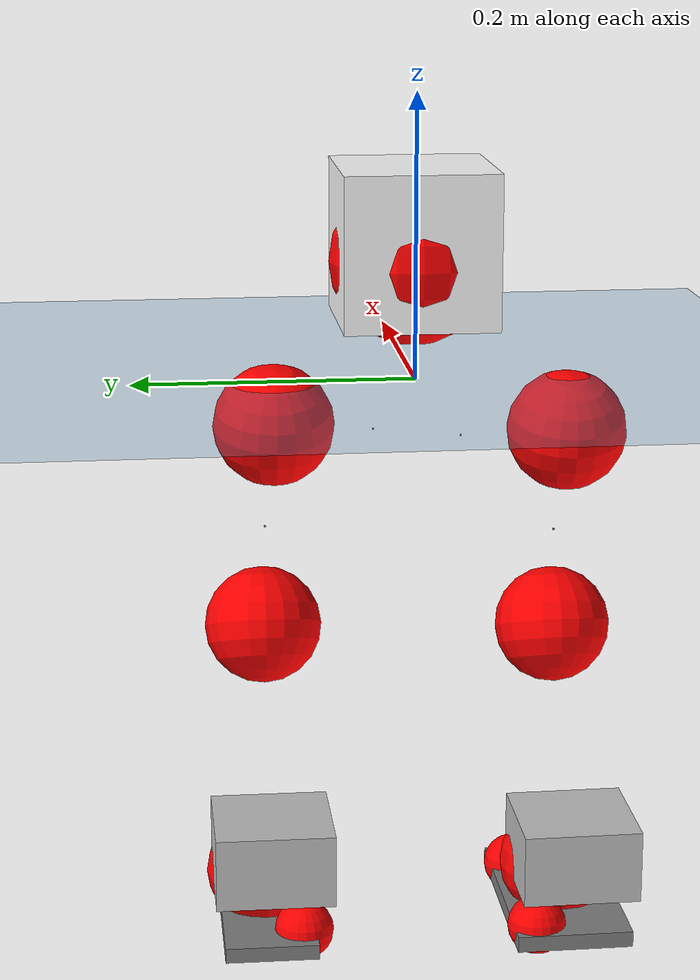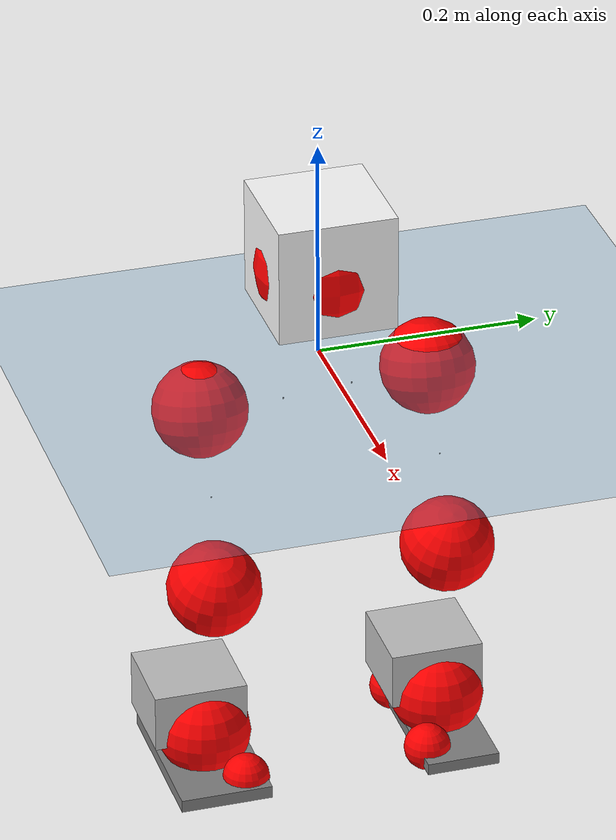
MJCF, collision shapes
<mujoco model="pi_12dof_release_v1">
  <compiler angle="radian" assetdir="assets" balanceinertia="true" inertiafromgeom="false"/>

  <option timestep="0.005" density="1.2" viscosity="2e-05"/>

  <size nkey="1"/>

  <visual>
    <quality shadowsize="8192"/>
    <map shadowclip="0.5"/>
  </visual>

  <default>
    <default class="/">
      <joint armature="0.01" damping="0.01" frictionloss="0.01"/>
      <geom contype="0" conaffinity="0" group="1" solref="-1000 -80"/>
      <site size="0.01 0.005 0.005" group="5"/>
      <general forcelimited="true" biastype="affine" gainprm="20" biasprm="0 -20 -0.5"/>
      <default class="foot">
        <geom size="0.0845 0.036 0.005" type="box" condim="6" group="4" priority="1" friction="0.9 0.2 0.2" solimp="0.015 1 0.005"/>
      </default>
      <default class="reward_collision_sphere">
        <geom group="5" rgba="1 0 0 1"/>
      </default>
    </default>
  </default>

  <asset>
    <texture type="skybox" colorspace="auto" name="//unnamed_texture_0" builtin="gradient" rgb1="0.95 0.95 0.95" rgb2="0.95 0.95 0.95" width="100" height="600"/>
    <texture type="2d" colorspace="auto" name="texplane" builtin="checker" rgb1="0.345 0.575 0.748" rgb2="0.345 0.575 0.748" markrgb="1 1 1" width="512" height="512"/>
    <material name="MatPlane" class="/" texture="texplane" texuniform="true" texrepeat="2 2" specular="0.9"/>
    <mesh name="baselink_1" class="/" file="baselink_1.STL"/>
    <mesh name="r_hip_pitch_link" class="/" file="r_hip_pitch_link.STL"/>
    <mesh name="r_hip_roll_link" class="/" file="r_hip_roll_link.STL"/>
    <mesh name="r_thigh_link" class="/" file="r_thigh_link.STL"/>
    <mesh name="r_calf_link" class="/" file="r_calf_link.STL"/>
    <mesh name="r_ankle_pitch_link" class="/" file="r_ankle_pitch_link.STL"/>
    <mesh name="r_ankle_roll_link" class="/" file="r_ankle_roll_link.STL"/>
    <mesh name="l_hip_pitch_link" class="/" file="l_hip_pitch_link.STL"/>
    <mesh name="l_hip_roll_link" class="/" file="l_hip_roll_link.STL"/>
    <mesh name="l_thigh_link" class="/" file="l_thigh_link.STL"/>
    <mesh name="l_calf_link" class="/" file="l_calf_link.STL"/>
    <mesh name="l_ankle_pitch_link" class="/" file="l_ankle_pitch_link.STL"/>
    <mesh name="l_ankle_roll_link" class="/" file="l_ankle_roll_link.STL"/>
  </asset>

  <worldbody>
    <geom name="floor" class="/" size="100 100 0.125" type="plane" group="0" material="MatPlane"/>
    <light name="toplight_shadow" class="/" pos="0 0 5" dir="0.0990148 0.0990148 -0.990148" type="directional" ambient="0.04 0.04 0.04" diffuse="0.55 0.55 0.55" specular="0.12 0.12 0.12"/>
    <light name="toplight_fill" class="/" pos="0 0 5" dir="0.0990148 0.0990148 -0.990148" type="directional" castshadow="false" ambient="0.04 0.04 0.04" diffuse="0.3 0.3 0.3" specular="0.08 0.08 0.08"/>
    <body name="trunk" pos="0.000805373 0.00204415 0.00163318" quat="1 5.81131e-05 0.00010044 -3.67385e-06">
      <inertial pos="0.00431064 0.00262191 0.0479964" quat="0.676176 0.0187777 0.0250327 0.736075" mass="2.70854" diaginertia="0.00307209 0.0260536 0.00972147"/>
      <joint name="//unnamed_joint_0" type="free"/>
      <geom name="//unnamed_geom_1" class="/" type="mesh" density="0" rgba="1 1 1 1" mesh="baselink_1"/>
      <geom name="//unnamed_geom_2" class="/" size="0.0536766 0.0536766 0.0536766" pos="0 0 0.094723" type="box" rgba="1 1 1 1"/>
      <geom name="//unnamed_geom_3" class="reward_collision_sphere" size="0.0590443" pos="0 0 0.0828827"/>
      <site name="imu" class="/" pos="-0.00876194 0.000937313 0.0101497" size="0.0107353"/>
      <camera name="track" class="/" pos="0 -2.48185 0" quat="0.707107 0.707107 0 0" mode="trackcom"/>
      <camera name="ego_camera" class="/" pos="0.0596724 0 0.213127" quat="-0.5 -0.5 0.5 0.5"/>
      <body name="r_hip_pitch_link" pos="-0.000185737 -0.0347503 -0.0434434" quat="0.992183 -0.00121263 -0.124781 -0.000188537">
        <inertial pos="-0.000474775 -0.0680579 0.000587197" quat="-0.0247013 0.701392 -0.0321617 0.711621" mass="0.468492" diaginertia="3.46469e-05 0.000304432 0.000190227"/>
        <joint name="r_hip_pitch_joint" class="/" pos="0 0 0" axis="-0.00509109 -0.999974 -0.00511379" stiffness="0.00258464" range="-1.76519 1.24234" armature="0.0106888" damping="0.00984143" frictionloss="0.00944753"/>
        <geom name="//unnamed_geom_4" class="/" type="mesh" density="0" rgba="0.75294 0.75294 0.75294 1" mesh="r_hip_pitch_link"/>
        <geom name="//unnamed_geom_5" class="/" size="0.000536766 0.000536766 0.000536766" type="box" rgba="0.75294 0.75294 0.75294 1"/>
        <body name="r_hip_roll_link" pos="0.00143812 -0.0763827 0.00122492" quat="1 -0.000538267 -0.000325066 -8.16486e-05">
          <inertial pos="-0.00257474 0.000206042 -0.0723156" quat="0.699641 -0.0776872 -0.097014 0.703601" mass="0.481724" diaginertia="0.000110048 0.000825814 0.000293803"/>
          <joint name="r_hip_roll_joint" class="/" pos="0 0 0" axis="-0.999995 -0.00241561 0.00204371" stiffness="0.0063569" range="-0.117865 0.443501" armature="0.0111764" damping="0.0508428" frictionloss="0.0100959"/>
          <geom name="//unnamed_geom_6" class="/" type="mesh" density="0" rgba="0.75294 0.75294 0.75294 1" mesh="r_hip_roll_link"/>
          <geom name="//unnamed_geom_7" class="/" size="0.000536766 0.000536766 0.000536766" type="box" rgba="0.75294 0.75294 0.75294 1"/>
          <geom name="//unnamed_geom_8" class="reward_collision_sphere" size="0.0429413"/>
          <body name="r_thigh_link" pos="-0.00152883 0.00432343 -0.0815084" quat="1 -0.000199329 5.56676e-05 4.85961e-05">
            <inertial pos="-0.000547006 0.00113492 -0.0508024" quat="0.738695 0.674032 0.00335324 0.000567108" mass="0.134481" diaginertia="4.03553e-05 0.000259312 0.000141883"/>
            <joint name="r_thigh_joint" class="/" pos="0 0 0" axis="0.00152519 0.00497054 -0.999986" range="-0.278728 0.591144" armature="0.00999353" damping="0.00788676" frictionloss="0.0104259"/>
            <geom name="//unnamed_geom_9" class="/" type="mesh" density="0" rgba="0.75294 0.75294 0.75294 1" mesh="r_thigh_link"/>
            <geom name="//unnamed_geom_10" class="/" size="0.000536766 0.000536766 0.000536766" type="box" rgba="0.75294 0.75294 0.75294 1"/>
            <body name="r_calf_link" pos="0.00109411 -0.00421393 -0.0835639" quat="0.947542 -1.8978e-05 0.319632 0.000219518">
              <inertial pos="-0.00225076 0.00120735 -0.0803032" quat="0.999975 -0.00512578 0.00435236 0.00228914" mass="1.0699" diaginertia="0.00111299 0.0113193 0.000401827"/>
              <joint name="r_calf_joint" class="/" pos="0 0 0" axis="0.00035601 -1 0.000462364" range="-1.77394 0.659331" armature="0.00946197" damping="0.00503485" frictionloss="0.011164"/>
              <geom name="//unnamed_geom_11" class="/" type="mesh" density="0" rgba="0.75294 0.75294 0.75294 1" mesh="r_calf_link"/>
              <geom name="//unnamed_geom_12" class="/" size="0.000536766 0.000536766 0.000536766" type="box" rgba="0.75294 0.75294 0.75294 1"/>
              <geom name="//unnamed_geom_13" class="reward_collision_sphere" size="0.0429413"/>
              <body name="r_ankle_pitch_link" pos="-0.00447329 -0.00574372 -0.165947" quat="0.979999 0.000142904 -0.199002 -0.000122688">
                <inertial pos="0.0029653 0.0100922 -0.00185945" quat="0.00258546 0.707475 -0.00191155 0.706731" mass="0.206803" diaginertia="9.64353e-05 0.000632781 0.000263478"/>
                <joint name="r_ankle_pitch_joint" class="/" pos="0 0 0" axis="-0.0229993 -0.999729 0.00353924" stiffness="0.00811513" range="-1.27879 0.411739" armature="0.0111656" damping="0.00523555" frictionloss="0.00976377"/>
                <geom name="//unnamed_geom_14" class="/" type="mesh" density="0" rgba="0.75294 0.75294 0.75294 1" mesh="r_ankle_pitch_link"/>
                <geom name="//unnamed_geom_15" class="/" size="0.0418677 0.0429413 0.0268383" type="box" rgba="0.75294 0.75294 0.75294 1"/>
                <body name="r_ankle_roll_link" pos="0.0653012 0.00667175 0.000815514" quat="0.999999 0.00108458 -0.000601349 0.00106682">
                  <inertial pos="-0.0170372 -0.000755967 -0.0181835" quat="0.559036 0.431098 0.435074 0.558877" mass="0.655995" diaginertia="0.000372706 0.0030181 0.000678333"/>
                  <joint name="r_ankle_roll_joint" class="/" pos="0 0 0" axis="-0.999999 0.001323 0.000297141" stiffness="0.00183046" range="-0.0448781 0.140403" armature="0.0108999" damping="0" frictionloss="0.0103776"/>
                  <geom name="//unnamed_geom_16" class="/" type="mesh" density="0" rgba="0.75294 0.75294 0.75294 1" mesh="r_ankle_roll_link"/>
                  <geom name="//unnamed_geom_17" class="/" type="mesh" rgba="0.75294 0.75294 0.75294 1" mesh="r_ankle_roll_link"/>
                  <geom name="right_foot" class="foot" size="0.0770243 0.0421513 0.0058787" pos="-0.0405772 0 -0.0520977"/>
                  <geom name="//unnamed_geom_19" class="reward_collision_sphere" size="0.0429413" pos="-0.0397816 0 -0.0236808"/>
                  <geom name="//unnamed_geom_20" class="reward_collision_sphere" size="0.0214706" pos="0.0119345 0.0248185 -0.0473615"/>
                  <geom name="//unnamed_geom_21" class="reward_collision_sphere" size="0.0214706" pos="-0.0954758 0.0248185 -0.0473615"/>
                  <site name="right_foot" class="foot" pos="-0.0405772 0 -0.0520977" size="0.0107353"/>
                </body>
              </body>
            </body>
          </body>
        </body>
      </body>
      <body name="l_hip_pitch_link" pos="0.00100745 0.02775 -0.0373321" quat="0.992259 -0.000884264 -0.124183 4.07611e-05">
        <inertial pos="-0.000194503 0.0701826 0.000346622" quat="-0.0454732 0.711695 0.029442 0.700396" mass="0.504505" diaginertia="4.13128e-05 0.000315658 0.000240912"/>
        <joint name="l_hip_pitch_joint" class="/" pos="0 0 0" axis="0.00317484 0.999992 0.00256938" range="-1.26155 1.75962" armature="0.0102845" damping="0.0188325" frictionloss="0.0102831"/>
        <geom name="//unnamed_geom_22" class="/" type="mesh" density="0" rgba="0.75294 0.75294 0.75294 1" mesh="l_hip_pitch_link"/>
        <geom name="//unnamed_geom_23" class="/" size="0.000536766 0.000536766 0.000536766" type="box" rgba="0.75294 0.75294 0.75294 1"/>
        <body name="l_hip_roll_link" pos="-0.000221286 0.0704921 0.00546942" quat="1 -0.000274254 -0.000280577 -0.000586725">
          <inertial pos="0.00163978 -0.00158979 -0.0672659" quat="0.699257 -0.0752408 -0.078309 0.706574" mass="0.454069" diaginertia="0.000105403 0.000850129 0.000299445"/>
          <joint name="l_hip_roll_joint" class="/" pos="0 0 0" axis="-0.999932 -0.00315579 -0.0112044" range="-0.408572 0.136794" armature="0.0093267" damping="0.0129444" frictionloss="0.0116893"/>
          <geom name="//unnamed_geom_24" class="/" type="mesh" density="0" rgba="0.75294 0.75294 0.75294 1" mesh="l_hip_roll_link"/>
          <geom name="//unnamed_geom_25" class="/" size="0.000536766 0.000536766 0.000536766" type="box" rgba="0.75294 0.75294 0.75294 1"/>
          <geom name="//unnamed_geom_26" class="reward_collision_sphere" size="0.0429413"/>
          <body name="l_thigh_link" pos="-0.000416127 0.00592678 -0.0824636" quat="1 0.000845458 0.000397925 -0.000119056">
            <inertial pos="5.03268e-05 -0.00165866 -0.0594951" quat="0.677471 0.735541 -0.00341539 0.00107676" mass="0.138763" diaginertia="3.80973e-05 0.000274754 0.000134203"/>
            <joint name="l_thigh_joint" class="/" pos="0 0 0" axis="-0.000648714 -0.00179939 -0.999998" range="-0.560116 0.292859" armature="0.0109923" damping="0" frictionloss="0.0109402"/>
            <geom name="//unnamed_geom_27" class="/" type="mesh" density="0" rgba="0.75294 0.75294 0.75294 1" mesh="l_thigh_link"/>
            <geom name="//unnamed_geom_28" class="/" size="0.000536766 0.000536766 0.000536766" type="box" rgba="0.75294 0.75294 0.75294 1"/>
            <body name="l_calf_link" pos="-0.00017288 0.00091354 -0.0841157" quat="0.947236 0.000920123 0.320535 -0.000173444">
              <inertial pos="0.00261015 0.00165258 -0.0818517" quat="0.999975 -0.0063127 -0.00172695 -0.00257179" mass="1.01722" diaginertia="0.00109941 0.0105439 0.000385084"/>
              <joint name="l_calf_joint" class="/" pos="0 0 0" axis="0.00162582 0.999998 -0.00134788" range="-0.601339 1.62123" armature="0.0119162" damping="0.0192259" frictionloss="0.0117736"/>
              <geom name="//unnamed_geom_29" class="/" type="mesh" density="0" rgba="0.75294 0.75294 0.75294 1" mesh="l_calf_link"/>
              <geom name="//unnamed_geom_30" class="/" size="0.000536766 0.000536766 0.000536766" type="box" rgba="0.75294 0.75294 0.75294 1"/>
              <geom name="//unnamed_geom_31" class="reward_collision_sphere" size="0.0429413"/>
              <body name="l_ankle_pitch_link" pos="0.00134887 -0.000988059 -0.165601" quat="0.97996 0.00164831 -0.199187 -0.000833477">
                <inertial pos="0.00424591 0.00282045 7.60031e-05" quat="-0.00818439 0.705521 0.0126645 0.708529" mass="0.220024" diaginertia="0.000100125 0.000656036 0.000278409"/>
                <joint name="l_ankle_pitch_joint" class="/" pos="0 0 0" axis="0.00203109 0.999995 0.00249171" range="-0.460971 1.29398" armature="0.0116948" damping="0.0197921" frictionloss="0.0106214"/>
                <geom name="//unnamed_geom_32" class="/" type="mesh" density="0" rgba="0.75294 0.75294 0.75294 1" mesh="l_ankle_pitch_link"/>
                <geom name="//unnamed_geom_33" class="/" size="0.0418677 0.0429413 0.0268383" type="box" rgba="0.75294 0.75294 0.75294 1"/>
                <body name="l_ankle_roll_link" pos="0.0663596 0.00404415 -0.00222786" quat="1 -0.000250243 0.000128853 0.000397083">
                  <inertial pos="-0.025233 -3.53848e-05 -0.0194367" quat="0.559967 0.436923 0.428302 0.558652" mass="0.62851" diaginertia="0.000340234 0.00293207 0.000675232"/>
                  <joint name="l_ankle_roll_joint" class="/" pos="0 0 0" axis="-0.999607 -0.000596119 -0.0280237" range="-0.262375 0.187867" armature="0.00851786" damping="0" frictionloss="0.0124072"/>
                  <geom name="//unnamed_geom_34" class="/" type="mesh" density="0" rgba="0.75294 0.75294 0.75294 1" mesh="l_ankle_roll_link"/>
                  <geom name="//unnamed_geom_35" class="/" type="mesh" rgba="0.75294 0.75294 0.75294 1" mesh="l_ankle_roll_link"/>
                  <geom name="left_foot" class="foot" size="0.0834352 0.0336006 0.00543899" pos="-0.0405772 0 -0.0520977"/>
                  <geom name="//unnamed_geom_37" class="reward_collision_sphere" size="0.0429413" pos="-0.0397816 0 -0.0236808"/>
                  <geom name="//unnamed_geom_38" class="reward_collision_sphere" size="0.0214706" pos="0.0119345 -0.0248185 -0.0473615"/>
                  <geom name="//unnamed_geom_39" class="reward_collision_sphere" size="0.0214706" pos="-0.0954758 -0.0248185 -0.0473615"/>
                  <site name="left_foot" class="foot" pos="-0.0405772 0 -0.0520977" size="0.0107353"/>
                </body>
              </body>
            </body>
          </body>
        </body>
      </body>
    </body>
  </worldbody>

  <contact>
    <pair class="/" geom1="floor" geom2="right_foot" name="//unnamed_contact_1"/>
    <pair class="/" geom1="floor" geom2="left_foot" name="//unnamed_contact_0"/>
  </contact>

  <actuator>
    <general name="r_hip_pitch_joint" class="/" joint="r_hip_pitch_joint" forcerange="-20.6265 20.6265" gainprm="21.5221" biasprm="0 -21.5221 -0.518372"/>
    <general name="r_hip_roll_joint" class="/" joint="r_hip_roll_joint" forcerange="-22.2762 22.2762" gainprm="21.5221" biasprm="0 -21.5221 -0.518372"/>
    <general name="r_thigh_joint" class="/" joint="r_thigh_joint" forcerange="-21.8122 21.8122" gainprm="21.5221" biasprm="0 -21.5221 -0.518372"/>
    <general name="r_calf_joint" class="/" joint="r_calf_joint" forcerange="-25.5286 25.5286" gainprm="21.5221" biasprm="0 -21.5221 -0.518372"/>
    <general name="r_ankle_pitch_joint" class="/" joint="r_ankle_pitch_joint" forcerange="-18.7573 18.7573" gainprm="21.5221" biasprm="0 -21.5221 -0.518372"/>
    <general name="r_ankle_roll_joint" class="/" joint="r_ankle_roll_joint" forcerange="-18.6936 18.6936" gainprm="21.5221" biasprm="0 -21.5221 -0.518372"/>
    <general name="l_hip_pitch_joint" class="/" joint="l_hip_pitch_joint" forcerange="-17.4107 17.4107" gainprm="21.5221" biasprm="0 -21.5221 -0.518372"/>
    <general name="l_hip_roll_joint" class="/" joint="l_hip_roll_joint" forcerange="-23.3088 23.3088" gainprm="21.5221" biasprm="0 -21.5221 -0.518372"/>
    <general name="l_thigh_joint" class="/" joint="l_thigh_joint" forcerange="-20.6592 20.6592" gainprm="21.5221" biasprm="0 -21.5221 -0.518372"/>
    <general name="l_calf_joint" class="/" joint="l_calf_joint" forcerange="-18.7276 18.7276" gainprm="21.5221" biasprm="0 -21.5221 -0.518372"/>
    <general name="l_ankle_pitch_joint" class="/" joint="l_ankle_pitch_joint" forcerange="-18.7055 18.7055" gainprm="21.5221" biasprm="0 -21.5221 -0.518372"/>
    <general name="l_ankle_roll_joint" class="/" joint="l_ankle_roll_joint" forcerange="-21.9245 21.9245" gainprm="21.5221" biasprm="0 -21.5221 -0.518372"/>
  </actuator>

  <sensor>
    <gyro site="imu" name="imu_angular_velocity"/>
    <velocimeter site="imu" name="imu_linear_velocity"/>
    <framelinvel objtype="site" objname="left_foot" name="left_foot_global_linear_velocity"/>
    <framelinvel objtype="site" objname="right_foot" name="right_foot_global_linear_velocity"/>
  </sensor>

  <keyframe>
    <key name="home" qpos="0 0 0.291 1 0 0 0 0.4 0 0 -0.8 0.4 0 -0.4 0 0 0.8 -0.4 0"/>
  </keyframe>
</mujoco>
